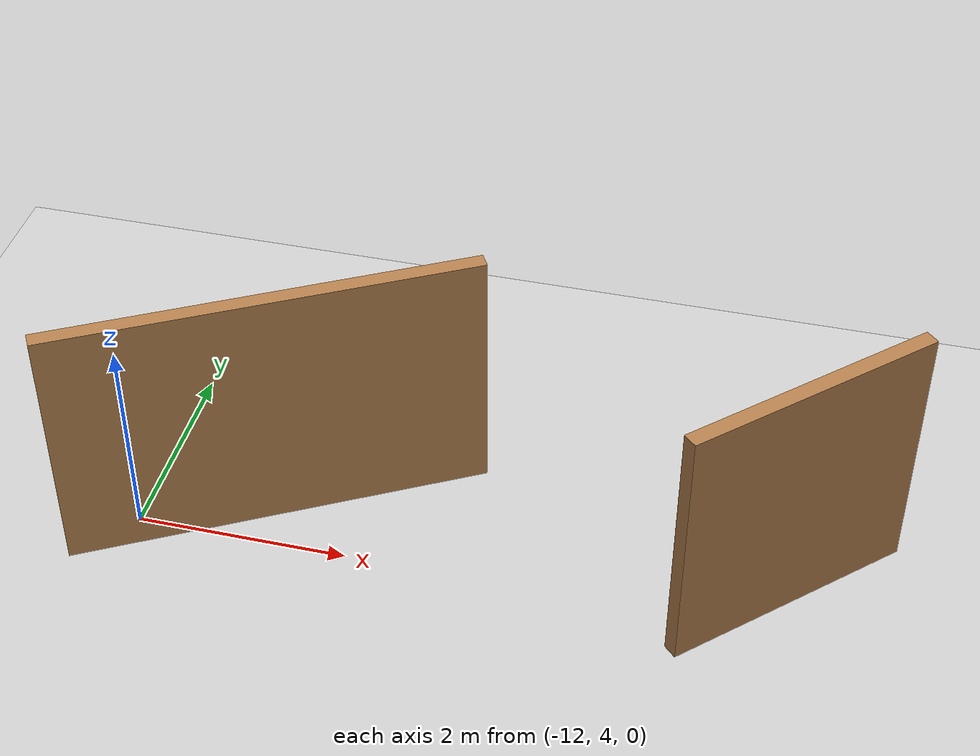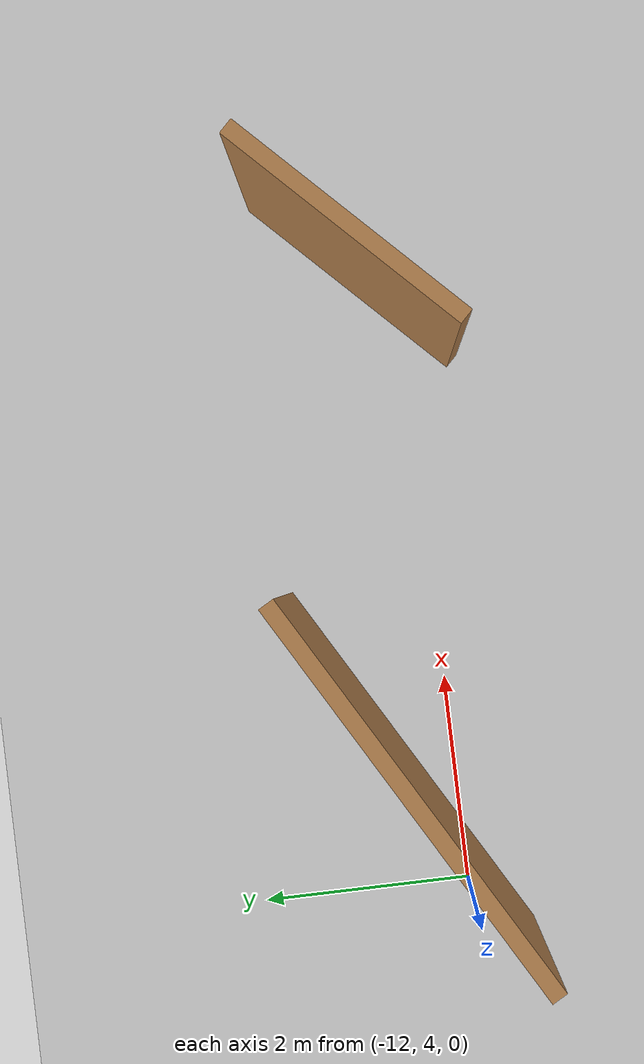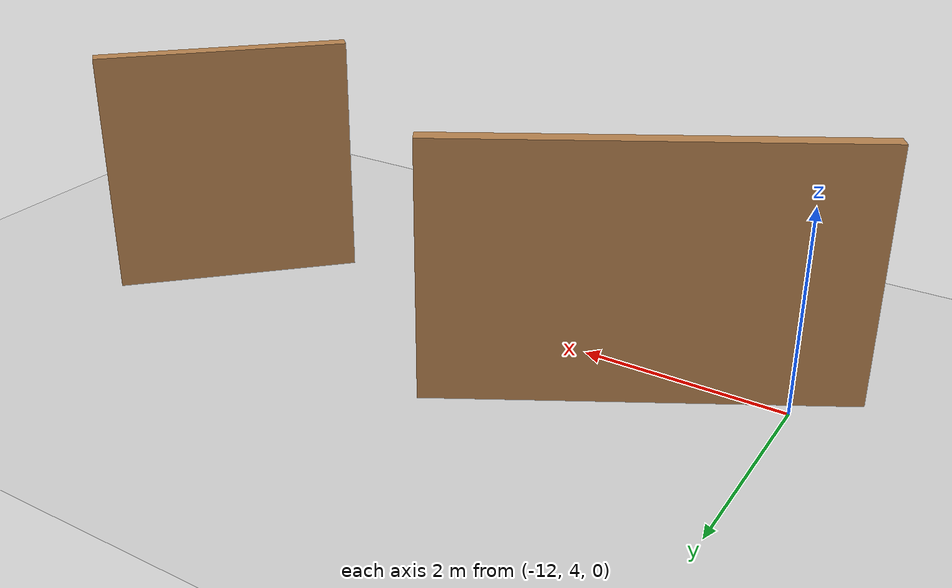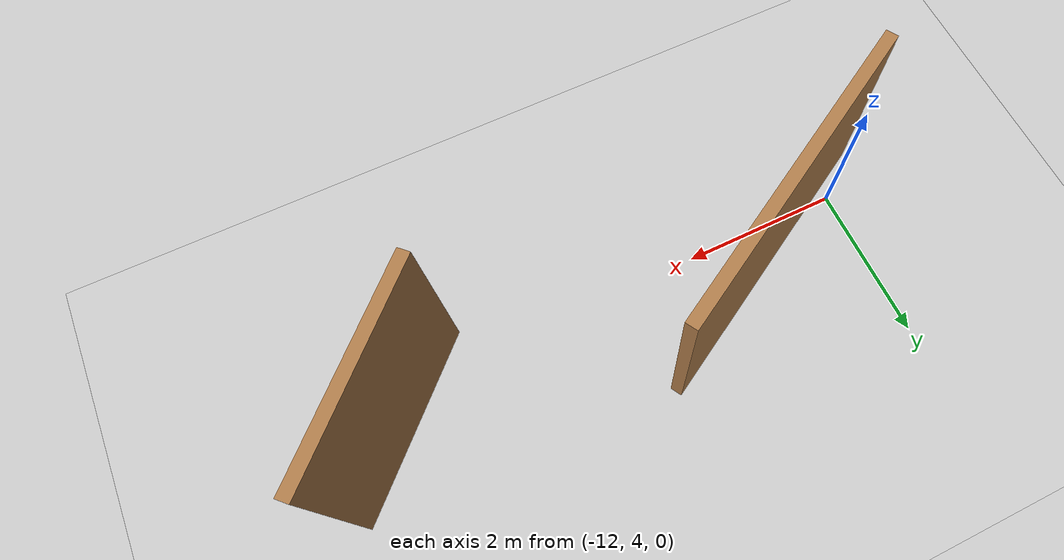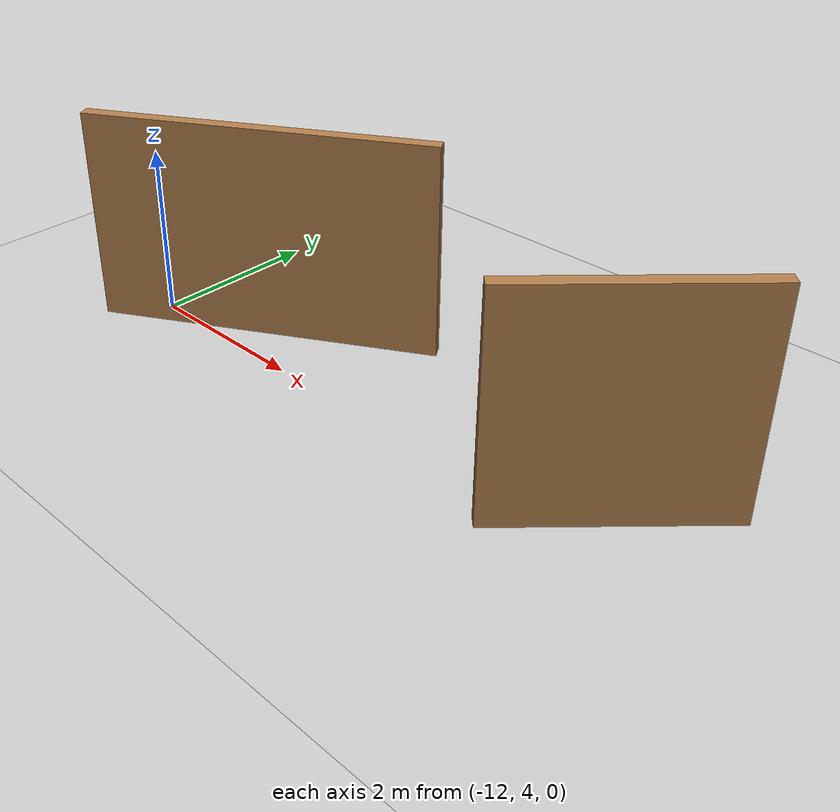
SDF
<sdf version="1.6">
 <world name="default">
  <model name="ground_plane">
   <static>1</static>
   <link name="link">
    <collision name="collision">
     <geometry><plane><normal>0 0 1</normal><size>100 100</size></plane></geometry>
     <surface><friction><ode><mu>100</mu><mu2>50</mu2></ode></friction></surface>
    </collision>
    <visual name="visual">
     <cast_shadows>0</cast_shadows>
     <geometry><plane><normal>0 0 1</normal><size>100 100</size></plane></geometry>
     <material>
      <script><uri>file://media/materials/scripts/gazebo.material</uri><name>Gazebo/Grey</name></script>
     </material>
    </visual>
   </link>
  </model>
  <model name="myHouse">
   <link name="Wall_19">
    <pose>-7.29505 -2.18861 0 0 -0 0.523599</pose>
    <visual name="Wall_19_Visual">
     <pose>0 0 1.25 0 -0 0</pose>
     <geometry><box><size>4 0.15 2.5</size></box></geometry>
     <material>
      <script><uri>file://media/materials/scripts/gazebo.material</uri><name>Gazebo/Wood</name></script>
      <ambient>1 1 1 1</ambient>
      <diffuse>1 1 1 1</diffuse>
      <specular>0.2 0.2 0.2 1</specular>
      <emissive>0 0 0 1</emissive>
     </material>
     <meta><layer>0</layer></meta>
    </visual>
    <collision name="Wall_19_Collision">
     <pose>0 0 1.25 0 -0 0</pose>
     <geometry><box><size>4 0.15 2.5</size></box></geometry>
     <surface>
      <friction>
       <ode><mu>1</mu><mu2>1</mu2><fdir1>0 0 0</fdir1><slip1>0</slip1><slip2>0</slip2></ode>
       <torsional>
        <coefficient>1</coefficient>
        <patch_radius>0</patch_radius>
        <surface_radius>0</surface_radius>
        <use_patch_radius>1</use_patch_radius>
        <ode><slip>0</slip></ode>
       </torsional>
      </friction>
      <bounce><restitution_coefficient>0</restitution_coefficient><threshold>1e+06</threshold></bounce>
      <contact>
       <collide_without_contact>0</collide_without_contact>
       <collide_without_contact_bitmask>1</collide_without_contact_bitmask>
       <collide_bitmask>1</collide_bitmask>
       <ode>
        <soft_cfm>0</soft_cfm>
        <soft_erp>0.2</soft_erp>
        <kp>1e+13</kp>
        <kd>1</kd>
        <max_vel>0.01</max_vel>
        <min_depth>0</min_depth>
       </ode>
       <bullet>
        <split_impulse>1</split_impulse>
        <split_impulse_penetration_threshold>-0.01</split_impulse_penetration_threshold>
        <soft_cfm>0</soft_cfm>
        <soft_erp>0.2</soft_erp>
        <kp>1e+13</kp>
        <kd>1</kd>
       </bullet>
      </contact>
     </surface>
    </collision>
   </link>
   <link name="Wall_26">
    <pose>-2.5474 -2.20148 0 0 -0 0.785398</pose>
    <visual name="Wall_26_Visual">
     <pose>0 0 1.25 0 -0 0</pose>
     <geometry><box><size>2.5 0.15 2.5</size></box></geometry>
     <material>
      <script><uri>file://media/materials/scripts/gazebo.material</uri><name>Gazebo/Wood</name></script>
      <ambient>1 1 1 1</ambient>
      <diffuse>1 1 1 1</diffuse>
      <specular>0.2 0.2 0.2 1</specular>
      <emissive>0 0 0 1</emissive>
     </material>
     <meta><layer>0</layer></meta>
    </visual>
    <collision name="Wall_26_Collision">
     <pose>0 0 1.25 0 -0 0</pose>
     <geometry><box><size>2.5 0.15 2.5</size></box></geometry>
     <surface>
      <friction>
       <ode><mu>1</mu><mu2>1</mu2><fdir1>0 0 0</fdir1><slip1>0</slip1><slip2>0</slip2></ode>
       <torsional>
        <coefficient>1</coefficient>
        <patch_radius>0</patch_radius>
        <surface_radius>0</surface_radius>
        <use_patch_radius>1</use_patch_radius>
        <ode><slip>0</slip></ode>
       </torsional>
      </friction>
      <bounce><restitution_coefficient>0</restitution_coefficient><threshold>1e+06</threshold></bounce>
      <contact>
       <collide_without_contact>0</collide_without_contact>
       <collide_without_contact_bitmask>1</collide_without_contact_bitmask>
       <collide_bitmask>1</collide_bitmask>
       <ode>
        <soft_cfm>0</soft_cfm>
        <soft_erp>0.2</soft_erp>
        <kp>1e+13</kp>
        <kd>1</kd>
        <max_vel>0.01</max_vel>
        <min_depth>0</min_depth>
       </ode>
       <bullet>
        <split_impulse>1</split_impulse>
        <split_impulse_penetration_threshold>-0.01</split_impulse_penetration_threshold>
        <soft_cfm>0</soft_cfm>
        <soft_erp>0.2</soft_erp>
        <kp>1e+13</kp>
        <kd>1</kd>
       </bullet>
      </contact>
     </surface>
    </collision>
   </link>
   <static>1</static>
   <pose>-3.47025 6.64899 0 0 -0 0</pose>
  </model>
 </world>
</sdf>
